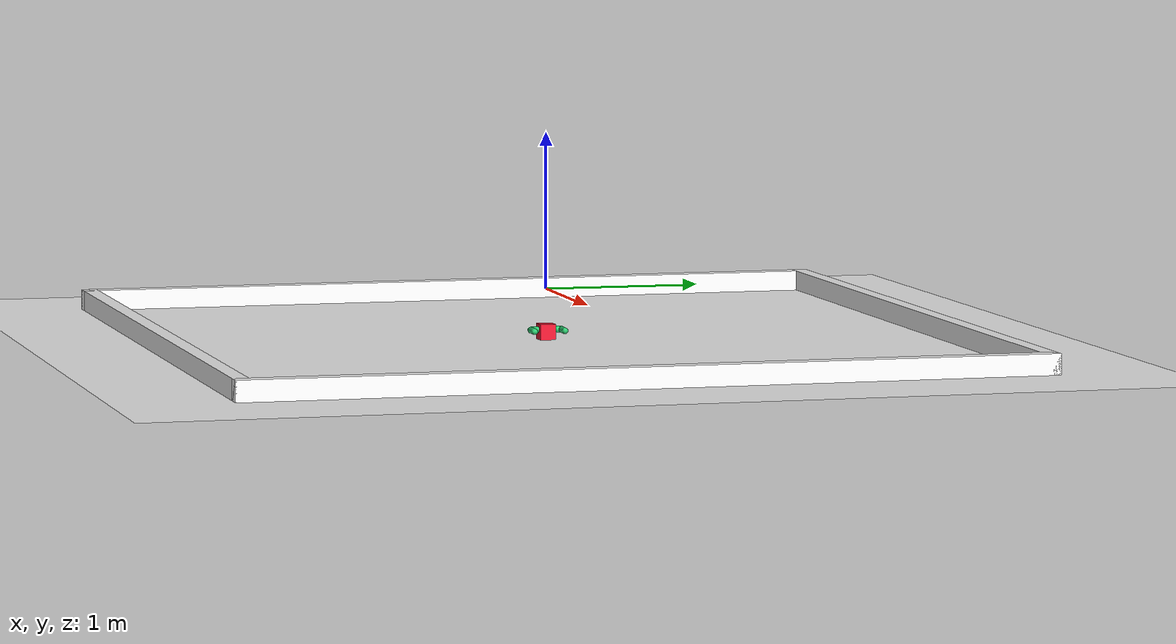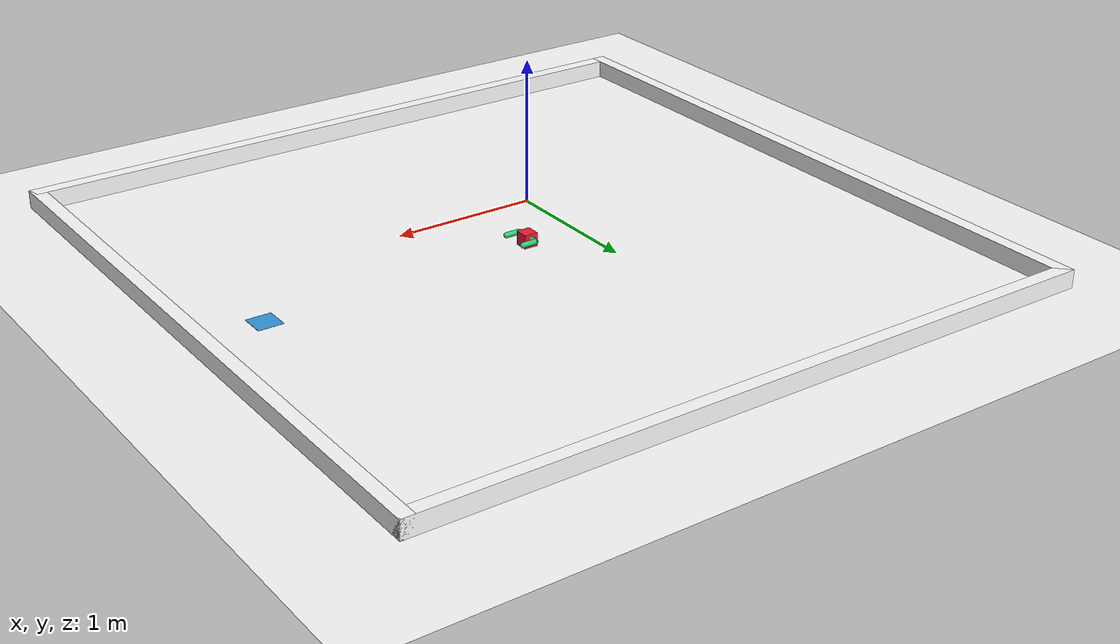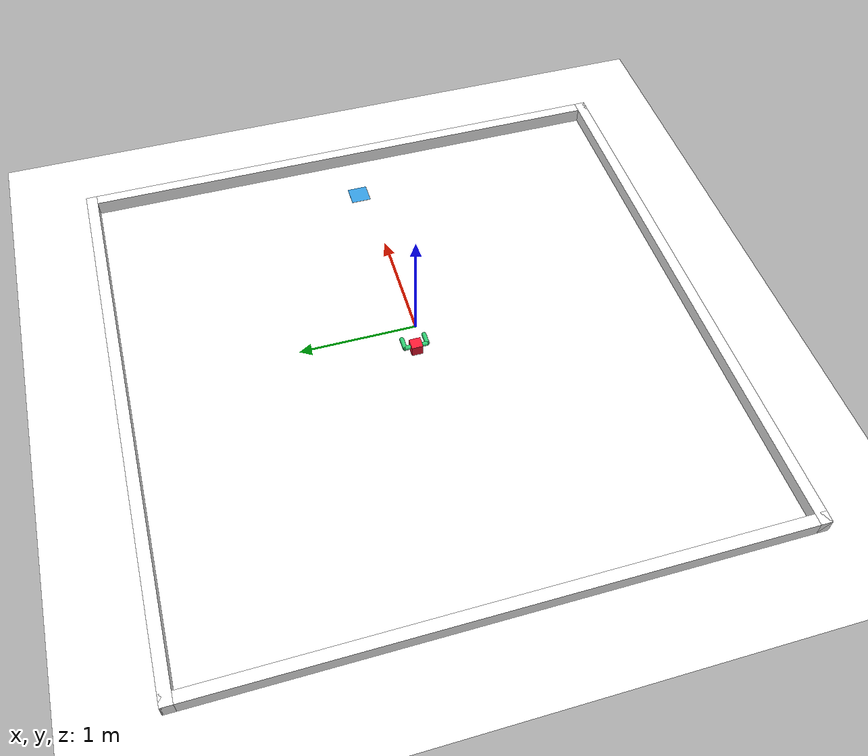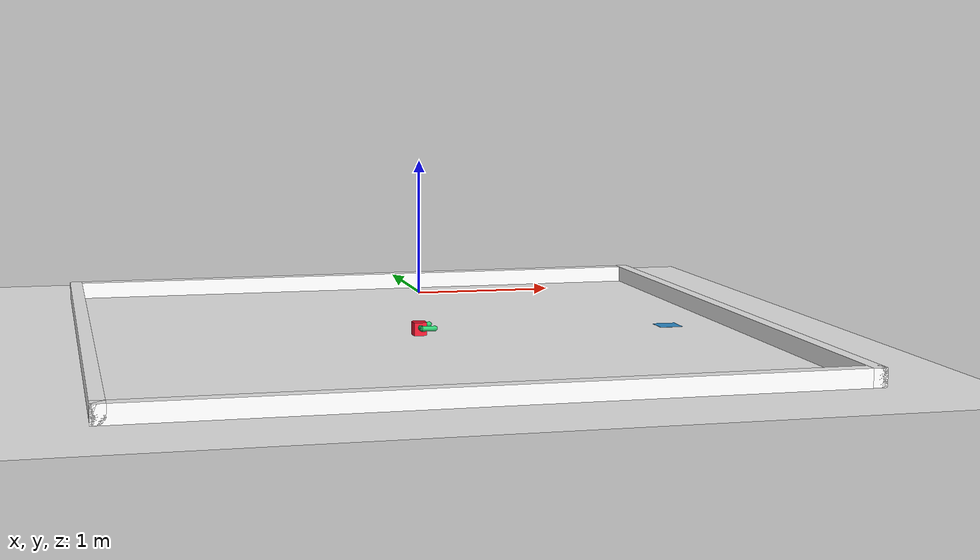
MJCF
<mujoco model="arm3d">
    <compiler angle="radian" coordinate="local" inertiafromgeom="true" meshdir="mesh" texturedir="textures" />
    <option gravity="0 0 0" integrator="Euler" iterations="20" timestep="0.01" />

    <default>
        <joint armature="0.04" damping="1" limited="true" />
        <geom conaffinity="0" condim="1" contype="0" density="10" friction=".8 .1 .1" margin="0.002" />
    </default>

    <worldbody>
        <light diffuse="0.75 0.75 0.75" dir="0 0 -1" pos="0 0 10" castshadow="false" />

        <geom conaffinity="1" contype="1" condim="1" name="table" pos="0 0.5 -0.325" size="10 10 0.1" type="plane" rgba="1.0 1.0 1.0 1" />

          <geom conaffinity="1" contype="1" condim="1" rgba="1.0 1.0 1.0 1" type="box" size="2.55 0.05 0.1" pos = "0 2.5 -0.3"/>
          <geom conaffinity="1" contype="1" condim="1" rgba="1.0 1.0 1.0 1" type="box" size="0.05 2.55 0.1" pos = "2.5 0 -0.3"/>
          <geom conaffinity="1" contype="1" condim="1" rgba="1.0 1.0 1.0 1" type="box" size="0.05 2.55 0.1" pos = "-2.5 0 -0.3"/>
          <geom conaffinity="1" contype="1" condim="1" rgba="1.0 1.0 1.0 1" type="box" size="2.55 0.05 0.1" pos = "0 -2.5 -0.3"/>

        <body name="wrist base" pos="0. 0. -0.2630">
            <joint axis="1 0 0" damping="0.5" name="wrist_slidex" pos="0 0 0" range="-10.3213 10.3" type="slide" />
            <joint axis="0 1 0" damping="0.5" name="wrist_slidey" pos="0 0 0" range="-10.3213 10.3" type="slide" />
            <joint axis="0 0 1" damping="0.5" name="wrist_hinge" pos="0 0 0" range="-10.3213 10.3" type="hinge" />
          <body name="tips_arm" pos="0 0 0">
            <geom conaffinity="1" rgba="0 1 0 1" contype="1" condim="1" name="tip_arml" pos="0.1 -0.1 0." size="0.01" type="sphere" />
            <geom conaffinity="1" rgba="0 1 0 1" contype="1" condim="1" name="tip_armr" pos="0.1 0.1 0." size="0.01" type="sphere" />
            <site name="arm" pos="0.02 0 0" size="0.001" />
    </body>

          <geom conaffinity="1" rgba="0.18 0.8 0.44 1" contype="1" condim="1" fromto="0 -0.1 0. 0.0 +0.1 0" size="0.02" type="capsule" />
          <geom conaffinity="1" rgba="0.18 0.8 0.44 1" contype="1" condim="1" fromto="0 -0.1 0. 0.1 -0.1 0" size="0.02" type="capsule" />
          <geom conaffinity="1" rgba="0.18 0.8 0.44 1" contype="1" condim="1" fromto="0 +0.1 0. 0.1 +0.1 0." size="0.02" type="capsule" />
        </body>

        <body name="obj1" pos="0.0 -0. -0.325">
            <joint axis="1 0 0" damping="0.5" name="obj1_slidex" pos="0 0 0.05" range="-2 2" type="slide" />
            <joint axis="0 1 0" damping="0.5" name="obj1_slidey" pos="0 0 0.05" range="-2 2" type="slide" />
            <geom conaffinity="1" contype="1" pos="0 0 0.05" density="0.001" size="0.05 0.05 0.05" rgba="0.95 0.1 0.2 1" type="box" name="object" />
        </body>

        <body name="target" pos="2. 0. -0.375">
            <geom conaffinity="0" contype="0" pos="0 0 0.05" density="0.001" size="0.09 0.09 0.001" rgba="0.2 0.6 0.86 1" type="box" />
        </body>

    </worldbody>

    <actuator>
        <motor ctrllimited="true" ctrlrange="-0.5 0.5" joint="wrist_slidex" />
        <motor ctrllimited="true" ctrlrange="-0.5 0.5" joint="wrist_slidey" />
        <motor ctrllimited="true" ctrlrange="-0.5 0.5" joint="wrist_hinge" />
    </actuator>

</mujoco>
